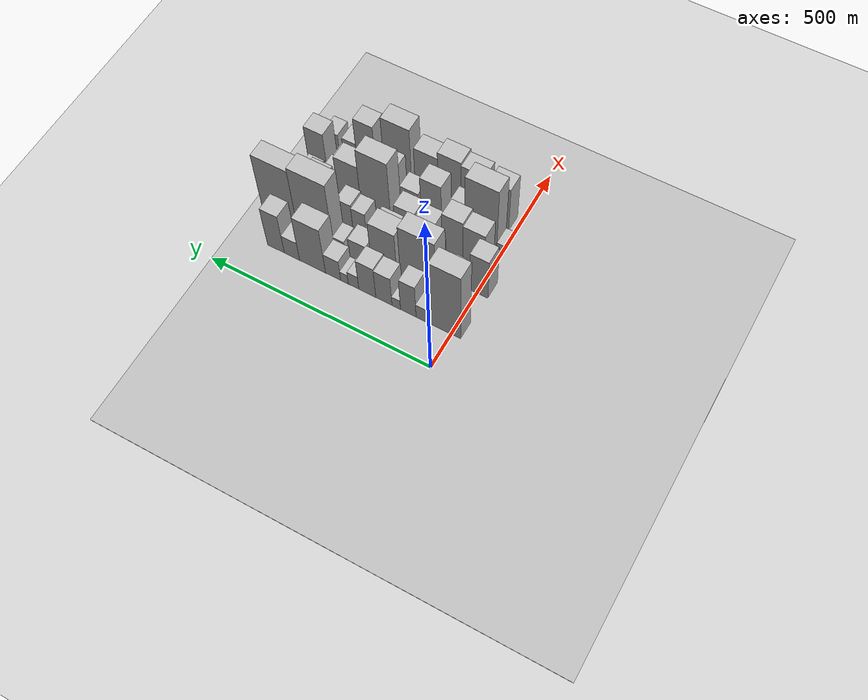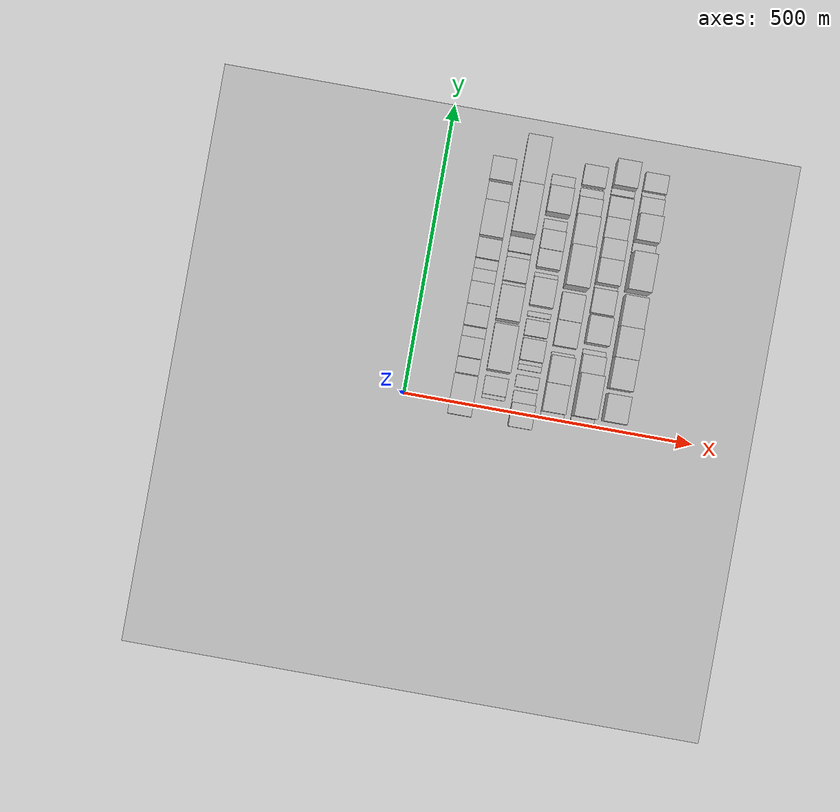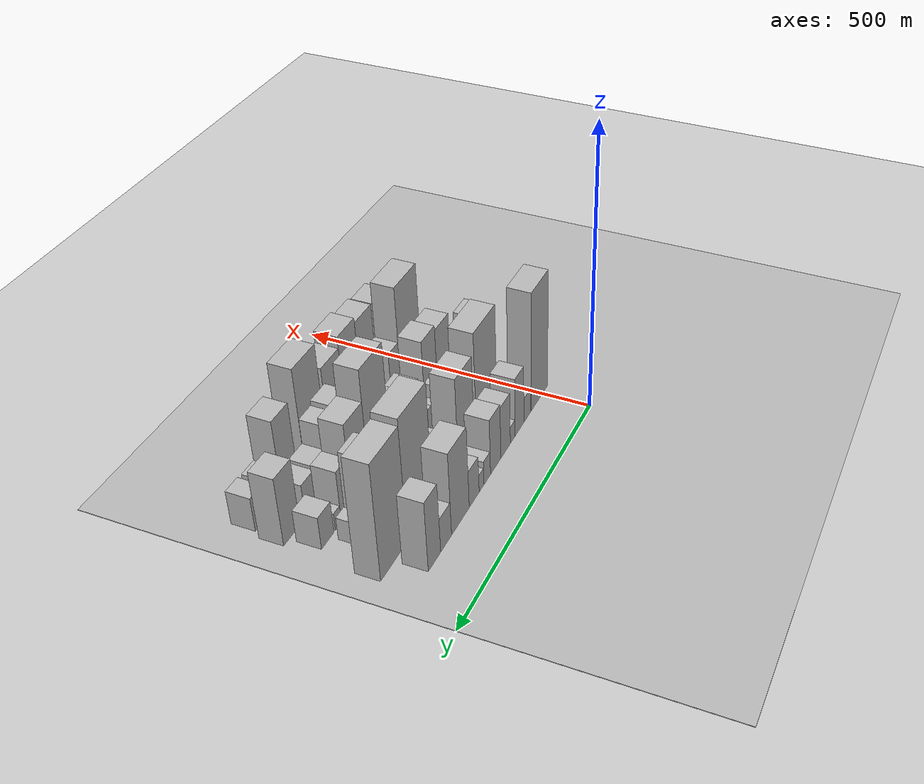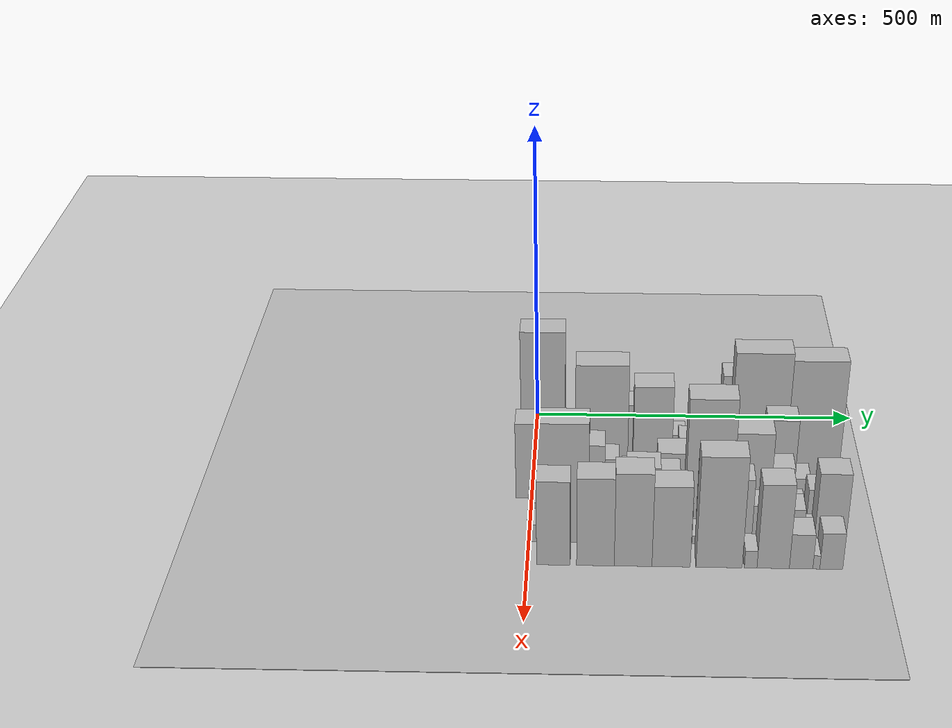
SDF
<sdf version="1.6">
 <world name="default">
  <include><name>ground_plane_1</name><uri>model://HANNAS_ground_plane</uri></include>
  <include>
   <name>ground_plane_2</name>
   <uri>model://HANNAS_ground_plane</uri>
   <pose>100 0 0  0 0 0</pose>
  </include>
  <model name="building_27">
   <static>1</static>
   <pose>100.0000 13.2216 0 0.000000 0.000000 0.000000</pose>
   <link name="link">
    <pose>0 0 112.50 0 0 0</pose>
    <collision name="collision"><geometry><box><size>40.0000 67.5674 225.0000</size></box></geometry></collision>
    <visual name="visual">
     <cast_shadows>0</cast_shadows>
     <geometry><box><size>40.0000 67.5674 225.0000</size></box></geometry>
     <material>
      <script>
       <uri>model://HANNAS_wall/materials/scripts</uri>
       <uri>model://HANNAS_wall/materials/textures</uri>
       <name>vrc/HANNAS_wall</name>
      </script>
     </material>
    </visual>
   </link>
  </model>
  <model name="building_28">
   <static>1</static>
   <pose>100.0000 64.4764 0 0.000000 0.000000 0.000000</pose>
   <link name="link">
    <pose>0 0 24.00 0 0 0</pose>
    <collision name="collision"><geometry><box><size>40.0000 26.9421 48.0000</size></box></geometry></collision>
    <visual name="visual">
     <cast_shadows>0</cast_shadows>
     <geometry><box><size>40.0000 26.9421 48.0000</size></box></geometry>
     <material>
      <script>
       <uri>model://HANNAS_wall/materials/scripts</uri>
       <uri>model://HANNAS_wall/materials/textures</uri>
       <name>vrc/HANNAS_wall</name>
      </script>
     </material>
    </visual>
   </link>
  </model>
  <model name="building_29">
   <static>1</static>
   <pose>100.0000 95.3213 0 0.000000 0.000000 0.000000</pose>
   <link name="link">
    <pose>0 0 55.50 0 0 0</pose>
    <collision name="collision"><geometry><box><size>40.0000 34.7477 111.0000</size></box></geometry></collision>
    <visual name="visual">
     <cast_shadows>0</cast_shadows>
     <geometry><box><size>40.0000 34.7477 111.0000</size></box></geometry>
     <material>
      <script>
       <uri>model://HANNAS_wall/materials/scripts</uri>
       <uri>model://HANNAS_wall/materials/textures</uri>
       <name>vrc/HANNAS_wall</name>
      </script>
     </material>
    </visual>
   </link>
  </model>
  <model name="building_30">
   <static>1</static>
   <pose>100.0000 122.2101 0 0.000000 0.000000 0.000000</pose>
   <link name="link">
    <pose>0 0 16.50 0 0 0</pose>
    <collision name="collision"><geometry><box><size>40.0000 19.0299 33.0000</size></box></geometry></collision>
    <visual name="visual">
     <cast_shadows>0</cast_shadows>
     <geometry><box><size>40.0000 19.0299 33.0000</size></box></geometry>
     <material>
      <script>
       <uri>model://HANNAS_wall/materials/scripts</uri>
       <uri>model://HANNAS_wall/materials/textures</uri>
       <name>vrc/HANNAS_wall</name>
      </script>
     </material>
    </visual>
   </link>
  </model>
  <model name="building_31">
   <static>1</static>
   <pose>100.0000 149.9771 0 0.000000 0.000000 0.000000</pose>
   <link name="link">
    <pose>0 0 49.50 0 0 0</pose>
    <collision name="collision"><geometry><box><size>40.0000 36.5041 99.0000</size></box></geometry></collision>
    <visual name="visual">
     <cast_shadows>0</cast_shadows>
     <geometry><box><size>40.0000 36.5041 99.0000</size></box></geometry>
     <material>
      <script>
       <uri>model://HANNAS_wall/materials/scripts</uri>
       <uri>model://HANNAS_wall/materials/textures</uri>
       <name>vrc/HANNAS_wall</name>
      </script>
     </material>
    </visual>
   </link>
  </model>
  <model name="building_32">
   <static>1</static>
   <pose>100.0000 187.5665 0 0.000000 0.000000 0.000000</pose>
   <link name="link">
    <pose>0 0 52.50 0 0 0</pose>
    <collision name="collision"><geometry><box><size>40.0000 38.6749 105.0000</size></box></geometry></collision>
    <visual name="visual">
     <cast_shadows>0</cast_shadows>
     <geometry><box><size>40.0000 38.6749 105.0000</size></box></geometry>
     <material>
      <script>
       <uri>model://HANNAS_wall/materials/scripts</uri>
       <uri>model://HANNAS_wall/materials/textures</uri>
       <name>vrc/HANNAS_wall</name>
      </script>
     </material>
    </visual>
   </link>
  </model>
  <model name="building_33">
   <static>1</static>
   <pose>100.0000 218.9175 0 0.000000 0.000000 0.000000</pose>
   <link name="link">
    <pose>0 0 22.50 0 0 0</pose>
    <collision name="collision"><geometry><box><size>40.0000 24.0271 45.0000</size></box></geometry></collision>
    <visual name="visual">
     <cast_shadows>0</cast_shadows>
     <geometry><box><size>40.0000 24.0271 45.0000</size></box></geometry>
     <material>
      <script>
       <uri>model://HANNAS_wall/materials/scripts</uri>
       <uri>model://HANNAS_wall/materials/textures</uri>
       <name>vrc/HANNAS_wall</name>
      </script>
     </material>
    </visual>
   </link>
  </model>
  <model name="building_34">
   <static>1</static>
   <pose>100.0000 239.6383 0 0.000000 0.000000 0.000000</pose>
   <link name="link">
    <pose>0 0 16.50 0 0 0</pose>
    <collision name="collision"><geometry><box><size>40.0000 17.4144 33.0000</size></box></geometry></collision>
    <visual name="visual">
     <cast_shadows>0</cast_shadows>
     <geometry><box><size>40.0000 17.4144 33.0000</size></box></geometry>
     <material>
      <script>
       <uri>model://HANNAS_wall/materials/scripts</uri>
       <uri>model://HANNAS_wall/materials/textures</uri>
       <name>vrc/HANNAS_wall</name>
      </script>
     </material>
    </visual>
   </link>
  </model>
  <model name="building_35">
   <static>1</static>
   <pose>100.0000 265.8331 0 0.000000 0.000000 0.000000</pose>
   <link name="link">
    <pose>0 0 34.50 0 0 0</pose>
    <collision name="collision"><geometry><box><size>40.0000 34.9752 69.0000</size></box></geometry></collision>
    <visual name="visual">
     <cast_shadows>0</cast_shadows>
     <geometry><box><size>40.0000 34.9752 69.0000</size></box></geometry>
     <material>
      <script>
       <uri>model://HANNAS_wall/materials/scripts</uri>
       <uri>model://HANNAS_wall/materials/textures</uri>
       <name>vrc/HANNAS_wall</name>
      </script>
     </material>
    </visual>
   </link>
  </model>
  <model name="building_36">
   <static>1</static>
   <pose>100.0000 313.4848 0 0.000000 0.000000 0.000000</pose>
   <link name="link">
    <pose>0 0 76.50 0 0 0</pose>
    <collision name="collision"><geometry><box><size>40.0000 60.3282 153.0000</size></box></geometry></collision>
    <visual name="visual">
     <cast_shadows>0</cast_shadows>
     <geometry><box><size>40.0000 60.3282 153.0000</size></box></geometry>
     <material>
      <script>
       <uri>model://HANNAS_wall/materials/scripts</uri>
       <uri>model://HANNAS_wall/materials/textures</uri>
       <name>vrc/HANNAS_wall</name>
      </script>
     </material>
    </visual>
   </link>
  </model>
  <model name="building_37">
   <static>1</static>
   <pose>100.0000 361.4340 0 0.000000 0.000000 0.000000</pose>
   <link name="link">
    <pose>0 0 31.50 0 0 0</pose>
    <collision name="collision"><geometry><box><size>40.0000 35.5702 63.0000</size></box></geometry></collision>
    <visual name="visual">
     <cast_shadows>0</cast_shadows>
     <geometry><box><size>40.0000 35.5702 63.0000</size></box></geometry>
     <material>
      <script>
       <uri>model://HANNAS_wall/materials/scripts</uri>
       <uri>model://HANNAS_wall/materials/textures</uri>
       <name>vrc/HANNAS_wall</name>
      </script>
     </material>
    </visual>
   </link>
  </model>
  <model name="building_38">
   <static>1</static>
   <pose>100.0000 399.0609 0 0.000000 0.000000 0.000000</pose>
   <link name="link">
    <pose>0 0 64.50 0 0 0</pose>
    <collision name="collision"><geometry><box><size>40.0000 39.6836 129.0000</size></box></geometry></collision>
    <visual name="visual">
     <cast_shadows>0</cast_shadows>
     <geometry><box><size>40.0000 39.6836 129.0000</size></box></geometry>
     <material>
      <script>
       <uri>model://HANNAS_wall/materials/scripts</uri>
       <uri>model://HANNAS_wall/materials/textures</uri>
       <name>vrc/HANNAS_wall</name>
      </script>
     </material>
    </visual>
   </link>
  </model>
  <model name="building_73">
   <static>1</static>
   <pose>152.0000 19.8623 0 0.000000 0.000000 0.000000</pose>
   <link name="link">
    <pose>0 0 7.50 0 0 0</pose>
    <collision name="collision"><geometry><box><size>40.0000 6.6824 15.0000</size></box></geometry></collision>
    <visual name="visual">
     <cast_shadows>0</cast_shadows>
     <geometry><box><size>40.0000 6.6824 15.0000</size></box></geometry>
     <material>
      <script>
       <uri>model://HANNAS_wall/materials/scripts</uri>
       <uri>model://HANNAS_wall/materials/textures</uri>
       <name>vrc/HANNAS_wall</name>
      </script>
     </material>
    </visual>
   </link>
  </model>
  <model name="building_74">
   <static>1</static>
   <pose>152.0000 38.7743 0 0.000000 0.000000 0.000000</pose>
   <link name="link">
    <pose>0 0 30.00 0 0 0</pose>
    <collision name="collision"><geometry><box><size>40.0000 31.1415 60.0000</size></box></geometry></collision>
    <visual name="visual">
     <cast_shadows>0</cast_shadows>
     <geometry><box><size>40.0000 31.1415 60.0000</size></box></geometry>
     <material>
      <script>
       <uri>model://HANNAS_wall/materials/scripts</uri>
       <uri>model://HANNAS_wall/materials/textures</uri>
       <name>vrc/HANNAS_wall</name>
      </script>
     </material>
    </visual>
   </link>
  </model>
  <model name="building_75">
   <static>1</static>
   <pose>152.0000 102.5179 0 0.000000 0.000000 0.000000</pose>
   <link name="link">
    <pose>0 0 100.50 0 0 0</pose>
    <collision name="collision"><geometry><box><size>40.0000 78.3458 201.0000</size></box></geometry></collision>
    <visual name="visual">
     <cast_shadows>0</cast_shadows>
     <geometry><box><size>40.0000 78.3458 201.0000</size></box></geometry>
     <material>
      <script>
       <uri>model://HANNAS_wall/materials/scripts</uri>
       <uri>model://HANNAS_wall/materials/textures</uri>
       <name>vrc/HANNAS_wall</name>
      </script>
     </material>
    </visual>
   </link>
  </model>
  <model name="building_76">
   <static>1</static>
   <pose>152.0000 178.8193 0 0.000000 0.000000 0.000000</pose>
   <link name="link">
    <pose>0 0 82.50 0 0 0</pose>
    <collision name="collision"><geometry><box><size>40.0000 58.2570 165.0000</size></box></geometry></collision>
    <visual name="visual">
     <cast_shadows>0</cast_shadows>
     <geometry><box><size>40.0000 58.2570 165.0000</size></box></geometry>
     <material>
      <script>
       <uri>model://HANNAS_wall/materials/scripts</uri>
       <uri>model://HANNAS_wall/materials/textures</uri>
       <name>vrc/HANNAS_wall</name>
      </script>
     </material>
    </visual>
   </link>
  </model>
  <model name="building_77">
   <static>1</static>
   <pose>152.0000 213.1095 0 0.000000 0.000000 0.000000</pose>
   <link name="link">
    <pose>0 0 12.00 0 0 0</pose>
    <collision name="collision"><geometry><box><size>40.0000 10.3234 24.0000</size></box></geometry></collision>
    <visual name="visual">
     <cast_shadows>0</cast_shadows>
     <geometry><box><size>40.0000 10.3234 24.0000</size></box></geometry>
     <material>
      <script>
       <uri>model://HANNAS_wall/materials/scripts</uri>
       <uri>model://HANNAS_wall/materials/textures</uri>
       <name>vrc/HANNAS_wall</name>
      </script>
     </material>
    </visual>
   </link>
  </model>
  <model name="building_78">
   <static>1</static>
   <pose>152.0000 238.5202 0 0.000000 0.000000 0.000000</pose>
   <link name="link">
    <pose>0 0 36.00 0 0 0</pose>
    <collision name="collision"><geometry><box><size>40.0000 40.4979 72.0000</size></box></geometry></collision>
    <visual name="visual">
     <cast_shadows>0</cast_shadows>
     <geometry><box><size>40.0000 40.4979 72.0000</size></box></geometry>
     <material>
      <script>
       <uri>model://HANNAS_wall/materials/scripts</uri>
       <uri>model://HANNAS_wall/materials/textures</uri>
       <name>vrc/HANNAS_wall</name>
      </script>
     </material>
    </visual>
   </link>
  </model>
  <model name="building_79">
   <static>1</static>
   <pose>152.0000 264.0107 0 0.000000 0.000000 0.000000</pose>
   <link name="link">
    <pose>0 0 10.50 0 0 0</pose>
    <collision name="collision"><geometry><box><size>40.0000 10.4831 21.0000</size></box></geometry></collision>
    <visual name="visual">
     <cast_shadows>0</cast_shadows>
     <geometry><box><size>40.0000 10.4831 21.0000</size></box></geometry>
     <material>
      <script>
       <uri>model://HANNAS_wall/materials/scripts</uri>
       <uri>model://HANNAS_wall/materials/textures</uri>
       <name>vrc/HANNAS_wall</name>
      </script>
     </material>
    </visual>
   </link>
  </model>
  <model name="building_80">
   <static>1</static>
   <pose>152.0000 282.2020 0 0.000000 0.000000 0.000000</pose>
   <link name="link">
    <pose>0 0 25.50 0 0 0</pose>
    <collision name="collision"><geometry><box><size>40.0000 25.8995 51.0000</size></box></geometry></collision>
    <visual name="visual">
     <cast_shadows>0</cast_shadows>
     <geometry><box><size>40.0000 25.8995 51.0000</size></box></geometry>
     <material>
      <script>
       <uri>model://HANNAS_wall/materials/scripts</uri>
       <uri>model://HANNAS_wall/materials/textures</uri>
       <name>vrc/HANNAS_wall</name>
      </script>
     </material>
    </visual>
   </link>
  </model>
  <model name="building_81">
   <static>1</static>
   <pose>152.0000 337.0492 0 0.000000 0.000000 0.000000</pose>
   <link name="link">
    <pose>0 0 112.50 0 0 0</pose>
    <collision name="collision"><geometry><box><size>40.0000 83.7949 225.0000</size></box></geometry></collision>
    <visual name="visual">
     <cast_shadows>0</cast_shadows>
     <geometry><box><size>40.0000 83.7949 225.0000</size></box></geometry>
     <material>
      <script>
       <uri>model://HANNAS_wall/materials/scripts</uri>
       <uri>model://HANNAS_wall/materials/textures</uri>
       <name>vrc/HANNAS_wall</name>
      </script>
     </material>
    </visual>
   </link>
  </model>
  <model name="building_82">
   <static>1</static>
   <pose>152.0000 419.2887 0 0.000000 0.000000 0.000000</pose>
   <link name="link">
    <pose>0 0 106.50 0 0 0</pose>
    <collision name="collision"><geometry><box><size>40.0000 80.6842 213.0000</size></box></geometry></collision>
    <visual name="visual">
     <cast_shadows>0</cast_shadows>
     <geometry><box><size>40.0000 80.6842 213.0000</size></box></geometry>
     <material>
      <script>
       <uri>model://HANNAS_wall/materials/scripts</uri>
       <uri>model://HANNAS_wall/materials/textures</uri>
       <name>vrc/HANNAS_wall</name>
      </script>
     </material>
    </visual>
   </link>
  </model>
  <model name="building_119">
   <static>1</static>
   <pose>204.0000 -3.3981 0 0.000000 0.000000 0.000000</pose>
   <link name="link">
    <pose>0 0 66.00 0 0 0</pose>
    <collision name="collision"><geometry><box><size>40.0000 41.2160 132.0000</size></box></geometry></collision>
    <visual name="visual">
     <cast_shadows>0</cast_shadows>
     <geometry><box><size>40.0000 41.2160 132.0000</size></box></geometry>
     <material>
      <script>
       <uri>model://HANNAS_wall/materials/scripts</uri>
       <uri>model://HANNAS_wall/materials/textures</uri>
       <name>vrc/HANNAS_wall</name>
      </script>
     </material>
    </visual>
   </link>
  </model>
  <model name="building_120">
   <static>1</static>
   <pose>204.0000 27.8079 0 0.000000 0.000000 0.000000</pose>
   <link name="link">
    <pose>0 0 18.00 0 0 0</pose>
    <collision name="collision"><geometry><box><size>40.0000 21.1960 36.0000</size></box></geometry></collision>
    <visual name="visual">
     <cast_shadows>0</cast_shadows>
     <geometry><box><size>40.0000 21.1960 36.0000</size></box></geometry>
     <material>
      <script>
       <uri>model://HANNAS_wall/materials/scripts</uri>
       <uri>model://HANNAS_wall/materials/textures</uri>
       <name>vrc/HANNAS_wall</name>
      </script>
     </material>
    </visual>
   </link>
  </model>
  <model name="building_121">
   <static>1</static>
   <pose>204.0000 55.0199 0 0.000000 0.000000 0.000000</pose>
   <link name="link">
    <pose>0 0 18.00 0 0 0</pose>
    <collision name="collision"><geometry><box><size>40.0000 21.2279 36.0000</size></box></geometry></collision>
    <visual name="visual">
     <cast_shadows>0</cast_shadows>
     <geometry><box><size>40.0000 21.2279 36.0000</size></box></geometry>
     <material>
      <script>
       <uri>model://HANNAS_wall/materials/scripts</uri>
       <uri>model://HANNAS_wall/materials/textures</uri>
       <name>vrc/HANNAS_wall</name>
      </script>
     </material>
    </visual>
   </link>
  </model>
  <model name="building_122">
   <static>1</static>
   <pose>204.0000 79.4719 0 0.000000 0.000000 0.000000</pose>
   <link name="link">
    <pose>0 0 10.50 0 0 0</pose>
    <collision name="collision"><geometry><box><size>40.0000 9.6762 21.0000</size></box></geometry></collision>
    <visual name="visual">
     <cast_shadows>0</cast_shadows>
     <geometry><box><size>40.0000 9.6762 21.0000</size></box></geometry>
     <material>
      <script>
       <uri>model://HANNAS_wall/materials/scripts</uri>
       <uri>model://HANNAS_wall/materials/textures</uri>
       <name>vrc/HANNAS_wall</name>
      </script>
     </material>
    </visual>
   </link>
  </model>
  <model name="building_123">
   <static>1</static>
   <pose>204.0000 87.6739 0 0.000000 0.000000 0.000000</pose>
   <link name="link">
    <pose>0 0 7.50 0 0 0</pose>
    <collision name="collision"><geometry><box><size>40.0000 6.7277 15.0000</size></box></geometry></collision>
    <visual name="visual">
     <cast_shadows>0</cast_shadows>
     <geometry><box><size>40.0000 6.7277 15.0000</size></box></geometry>
     <material>
      <script>
       <uri>model://HANNAS_wall/materials/scripts</uri>
       <uri>model://HANNAS_wall/materials/textures</uri>
       <name>vrc/HANNAS_wall</name>
      </script>
     </material>
    </visual>
   </link>
  </model>
  <model name="building_124">
   <static>1</static>
   <pose>204.0000 109.7124 0 0.000000 0.000000 0.000000</pose>
   <link name="link">
    <pose>0 0 36.00 0 0 0</pose>
    <collision name="collision"><geometry><box><size>40.0000 37.3494 72.0000</size></box></geometry></collision>
    <visual name="visual">
     <cast_shadows>0</cast_shadows>
     <geometry><box><size>40.0000 37.3494 72.0000</size></box></geometry>
     <material>
      <script>
       <uri>model://HANNAS_wall/materials/scripts</uri>
       <uri>model://HANNAS_wall/materials/textures</uri>
       <name>vrc/HANNAS_wall</name>
      </script>
     </material>
    </visual>
   </link>
  </model>
  <model name="building_125">
   <static>1</static>
   <pose>204.0000 147.2121 0 0.000000 0.000000 0.000000</pose>
   <link name="link">
    <pose>0 0 25.50 0 0 0</pose>
    <collision name="collision"><geometry><box><size>40.0000 27.6498 51.0000</size></box></geometry></collision>
    <visual name="visual">
     <cast_shadows>0</cast_shadows>
     <geometry><box><size>40.0000 27.6498 51.0000</size></box></geometry>
     <material>
      <script>
       <uri>model://HANNAS_wall/materials/scripts</uri>
       <uri>model://HANNAS_wall/materials/textures</uri>
       <name>vrc/HANNAS_wall</name>
      </script>
     </material>
    </visual>
   </link>
  </model>
  <model name="building_126">
   <static>1</static>
   <pose>204.0000 171.4662 0 0.000000 0.000000 0.000000</pose>
   <link name="link">
    <pose>0 0 9.00 0 0 0</pose>
    <collision name="collision"><geometry><box><size>40.0000 8.8585 18.0000</size></box></geometry></collision>
    <visual name="visual">
     <cast_shadows>0</cast_shadows>
     <geometry><box><size>40.0000 8.8585 18.0000</size></box></geometry>
     <material>
      <script>
       <uri>model://HANNAS_wall/materials/scripts</uri>
       <uri>model://HANNAS_wall/materials/textures</uri>
       <name>vrc/HANNAS_wall</name>
      </script>
     </material>
    </visual>
   </link>
  </model>
  <model name="building_127">
   <static>1</static>
   <pose>204.0000 209.0223 0 0.000000 0.000000 0.000000</pose>
   <link name="link">
    <pose>0 0 42.00 0 0 0</pose>
    <collision name="collision"><geometry><box><size>40.0000 48.2535 84.0000</size></box></geometry></collision>
    <visual name="visual">
     <cast_shadows>0</cast_shadows>
     <geometry><box><size>40.0000 48.2535 84.0000</size></box></geometry>
     <material>
      <script>
       <uri>model://HANNAS_wall/materials/scripts</uri>
       <uri>model://HANNAS_wall/materials/textures</uri>
       <name>vrc/HANNAS_wall</name>
      </script>
     </material>
    </visual>
   </link>
  </model>
  <model name="building_128">
   <static>1</static>
   <pose>204.0000 237.9112 0 0.000000 0.000000 0.000000</pose>
   <link name="link">
    <pose>0 0 10.50 0 0 0</pose>
    <collision name="collision"><geometry><box><size>40.0000 9.5244 21.0000</size></box></geometry></collision>
    <visual name="visual">
     <cast_shadows>0</cast_shadows>
     <geometry><box><size>40.0000 9.5244 21.0000</size></box></geometry>
     <material>
      <script>
       <uri>model://HANNAS_wall/materials/scripts</uri>
       <uri>model://HANNAS_wall/materials/textures</uri>
       <name>vrc/HANNAS_wall</name>
      </script>
     </material>
    </visual>
   </link>
  </model>
  <model name="building_129">
   <static>1</static>
   <pose>204.0000 265.3876 0 0.000000 0.000000 0.000000</pose>
   <link name="link">
    <pose>0 0 46.50 0 0 0</pose>
    <collision name="collision"><geometry><box><size>40.0000 31.4283 93.0000</size></box></geometry></collision>
    <visual name="visual">
     <cast_shadows>0</cast_shadows>
     <geometry><box><size>40.0000 31.4283 93.0000</size></box></geometry>
     <material>
      <script>
       <uri>model://HANNAS_wall/materials/scripts</uri>
       <uri>model://HANNAS_wall/materials/textures</uri>
       <name>vrc/HANNAS_wall</name>
      </script>
     </material>
    </visual>
   </link>
  </model>
  <model name="building_130">
   <static>1</static>
   <pose>204.0000 297.7533 0 0.000000 0.000000 0.000000</pose>
   <link name="link">
    <pose>0 0 51.00 0 0 0</pose>
    <collision name="collision"><geometry><box><size>40.0000 33.3032 102.0000</size></box></geometry></collision>
    <visual name="visual">
     <cast_shadows>0</cast_shadows>
     <geometry><box><size>40.0000 33.3032 102.0000</size></box></geometry>
     <material>
      <script>
       <uri>model://HANNAS_wall/materials/scripts</uri>
       <uri>model://HANNAS_wall/materials/textures</uri>
       <name>vrc/HANNAS_wall</name>
      </script>
     </material>
    </visual>
   </link>
  </model>
  <model name="building_131">
   <static>1</static>
   <pose>204.0000 324.5109 0 0.000000 0.000000 0.000000</pose>
   <link name="link">
    <pose>0 0 18.00 0 0 0</pose>
    <collision name="collision"><geometry><box><size>40.0000 20.2119 36.0000</size></box></geometry></collision>
    <visual name="visual">
     <cast_shadows>0</cast_shadows>
     <geometry><box><size>40.0000 20.2119 36.0000</size></box></geometry>
     <material>
      <script>
       <uri>model://HANNAS_wall/materials/scripts</uri>
       <uri>model://HANNAS_wall/materials/textures</uri>
       <name>vrc/HANNAS_wall</name>
      </script>
     </material>
    </visual>
   </link>
  </model>
  <model name="building_132">
   <static>1</static>
   <pose>204.0000 364.2510 0 0.000000 0.000000 0.000000</pose>
   <link name="link">
    <pose>0 0 72.00 0 0 0</pose>
    <collision name="collision"><geometry><box><size>40.0000 45.2684 144.0000</size></box></geometry></collision>
    <visual name="visual">
     <cast_shadows>0</cast_shadows>
     <geometry><box><size>40.0000 45.2684 144.0000</size></box></geometry>
     <material>
      <script>
       <uri>model://HANNAS_wall/materials/scripts</uri>
       <uri>model://HANNAS_wall/materials/textures</uri>
       <name>vrc/HANNAS_wall</name>
      </script>
     </material>
    </visual>
   </link>
  </model>
  <model name="building_133">
   <static>1</static>
   <pose>204.0000 398.8736 0 0.000000 0.000000 0.000000</pose>
   <link name="link">
    <pose>0 0 21.00 0 0 0</pose>
    <collision name="collision"><geometry><box><size>40.0000 23.9767 42.0000</size></box></geometry></collision>
    <visual name="visual">
     <cast_shadows>0</cast_shadows>
     <geometry><box><size>40.0000 23.9767 42.0000</size></box></geometry>
     <material>
      <script>
       <uri>model://HANNAS_wall/materials/scripts</uri>
       <uri>model://HANNAS_wall/materials/textures</uri>
       <name>vrc/HANNAS_wall</name>
      </script>
     </material>
    </visual>
   </link>
  </model>
  <model name="building_170">
   <static>1</static>
   <pose>256.0000 3.9679 0 0.000000 0.000000 0.000000</pose>
   <link name="link">
    <pose>0 0 15.00 0 0 0</pose>
    <collision name="collision"><geometry><box><size>40.0000 15.0082 30.0000</size></box></geometry></collision>
    <visual name="visual">
     <cast_shadows>0</cast_shadows>
     <geometry><box><size>40.0000 15.0082 30.0000</size></box></geometry>
     <material>
      <script>
       <uri>model://HANNAS_wall/materials/scripts</uri>
       <uri>model://HANNAS_wall/materials/textures</uri>
       <name>vrc/HANNAS_wall</name>
      </script>
     </material>
    </visual>
   </link>
  </model>
  <model name="building_171">
   <static>1</static>
   <pose>256.0000 35.9447 0 0.000000 0.000000 0.000000</pose>
   <link name="link">
    <pose>0 0 61.50 0 0 0</pose>
    <collision name="collision"><geometry><box><size>40.0000 48.9454 123.0000</size></box></geometry></collision>
    <visual name="visual">
     <cast_shadows>0</cast_shadows>
     <geometry><box><size>40.0000 48.9454 123.0000</size></box></geometry>
     <material>
      <script>
       <uri>model://HANNAS_wall/materials/scripts</uri>
       <uri>model://HANNAS_wall/materials/textures</uri>
       <name>vrc/HANNAS_wall</name>
      </script>
     </material>
    </visual>
   </link>
  </model>
  <model name="building_172">
   <static>1</static>
   <pose>256.0000 83.7700 0 0.000000 0.000000 0.000000</pose>
   <link name="link">
    <pose>0 0 66.00 0 0 0</pose>
    <collision name="collision"><geometry><box><size>40.0000 46.7054 132.0000</size></box></geometry></collision>
    <visual name="visual">
     <cast_shadows>0</cast_shadows>
     <geometry><box><size>40.0000 46.7054 132.0000</size></box></geometry>
     <material>
      <script>
       <uri>model://HANNAS_wall/materials/scripts</uri>
       <uri>model://HANNAS_wall/materials/textures</uri>
       <name>vrc/HANNAS_wall</name>
      </script>
     </material>
    </visual>
   </link>
  </model>
  <model name="building_173">
   <static>1</static>
   <pose>256.0000 110.8583 0 0.000000 0.000000 0.000000</pose>
   <link name="link">
    <pose>0 0 7.50 0 0 0</pose>
    <collision name="collision"><geometry><box><size>40.0000 7.4712 15.0000</size></box></geometry></collision>
    <visual name="visual">
     <cast_shadows>0</cast_shadows>
     <geometry><box><size>40.0000 7.4712 15.0000</size></box></geometry>
     <material>
      <script>
       <uri>model://HANNAS_wall/materials/scripts</uri>
       <uri>model://HANNAS_wall/materials/textures</uri>
       <name>vrc/HANNAS_wall</name>
      </script>
     </material>
    </visual>
   </link>
  </model>
  <model name="building_174">
   <static>1</static>
   <pose>256.0000 146.6210 0 0.000000 0.000000 0.000000</pose>
   <link name="link">
    <pose>0 0 37.50 0 0 0</pose>
    <collision name="collision"><geometry><box><size>40.0000 44.0542 75.0000</size></box></geometry></collision>
    <visual name="visual">
     <cast_shadows>0</cast_shadows>
     <geometry><box><size>40.0000 44.0542 75.0000</size></box></geometry>
     <material>
      <script>
       <uri>model://HANNAS_wall/materials/scripts</uri>
       <uri>model://HANNAS_wall/materials/textures</uri>
       <name>vrc/HANNAS_wall</name>
      </script>
     </material>
    </visual>
   </link>
  </model>
  <model name="building_175">
   <static>1</static>
   <pose>256.0000 192.3889 0 0.000000 0.000000 0.000000</pose>
   <link name="link">
    <pose>0 0 42.00 0 0 0</pose>
    <collision name="collision"><geometry><box><size>40.0000 47.4817 84.0000</size></box></geometry></collision>
    <visual name="visual">
     <cast_shadows>0</cast_shadows>
     <geometry><box><size>40.0000 47.4817 84.0000</size></box></geometry>
     <material>
      <script>
       <uri>model://HANNAS_wall/materials/scripts</uri>
       <uri>model://HANNAS_wall/materials/textures</uri>
       <name>vrc/HANNAS_wall</name>
      </script>
     </material>
    </visual>
   </link>
  </model>
  <model name="building_176">
   <static>1</static>
   <pose>256.0000 258.6175 0 0.000000 0.000000 0.000000</pose>
   <link name="link">
    <pose>0 0 106.50 0 0 0</pose>
    <collision name="collision"><geometry><box><size>40.0000 68.9754 213.0000</size></box></geometry></collision>
    <visual name="visual">
     <cast_shadows>0</cast_shadows>
     <geometry><box><size>40.0000 68.9754 213.0000</size></box></geometry>
     <material>
      <script>
       <uri>model://HANNAS_wall/materials/scripts</uri>
       <uri>model://HANNAS_wall/materials/textures</uri>
       <name>vrc/HANNAS_wall</name>
      </script>
     </material>
    </visual>
   </link>
  </model>
  <model name="building_177">
   <static>1</static>
   <pose>256.0000 319.9795 0 0.000000 0.000000 0.000000</pose>
   <link name="link">
    <pose>0 0 78.00 0 0 0</pose>
    <collision name="collision"><geometry><box><size>40.0000 53.7486 156.0000</size></box></geometry></collision>
    <visual name="visual">
     <cast_shadows>0</cast_shadows>
     <geometry><box><size>40.0000 53.7486 156.0000</size></box></geometry>
     <material>
      <script>
       <uri>model://HANNAS_wall/materials/scripts</uri>
       <uri>model://HANNAS_wall/materials/textures</uri>
       <name>vrc/HANNAS_wall</name>
      </script>
     </material>
    </visual>
   </link>
  </model>
  <model name="building_178">
   <static>1</static>
   <pose>256.0000 363.0875 0 0.000000 0.000000 0.000000</pose>
   <link name="link">
    <pose>0 0 48.00 0 0 0</pose>
    <collision name="collision"><geometry><box><size>40.0000 32.4675 96.0000</size></box></geometry></collision>
    <visual name="visual">
     <cast_shadows>0</cast_shadows>
     <geometry><box><size>40.0000 32.4675 96.0000</size></box></geometry>
     <material>
      <script>
       <uri>model://HANNAS_wall/materials/scripts</uri>
       <uri>model://HANNAS_wall/materials/textures</uri>
       <name>vrc/HANNAS_wall</name>
      </script>
     </material>
    </visual>
   </link>
  </model>
  <model name="building_179">
   <static>1</static>
   <pose>256.0000 388.3083 0 0.000000 0.000000 0.000000</pose>
   <link name="link">
    <pose>0 0 16.50 0 0 0</pose>
    <collision name="collision"><geometry><box><size>40.0000 17.9741 33.0000</size></box></geometry></collision>
    <visual name="visual">
     <cast_shadows>0</cast_shadows>
     <geometry><box><size>40.0000 17.9741 33.0000</size></box></geometry>
     <material>
      <script>
       <uri>model://HANNAS_wall/materials/scripts</uri>
       <uri>model://HANNAS_wall/materials/textures</uri>
       <name>vrc/HANNAS_wall</name>
      </script>
     </material>
    </visual>
   </link>
  </model>
  <model name="building_180">
   <static>1</static>
   <pose>256.0000 419.1254 0 0.000000 0.000000 0.000000</pose>
   <link name="link">
    <pose>0 0 30.00 0 0 0</pose>
    <collision name="collision"><geometry><box><size>40.0000 35.6601 60.0000</size></box></geometry></collision>
    <visual name="visual">
     <cast_shadows>0</cast_shadows>
     <geometry><box><size>40.0000 35.6601 60.0000</size></box></geometry>
     <material>
      <script>
       <uri>model://HANNAS_wall/materials/scripts</uri>
       <uri>model://HANNAS_wall/materials/textures</uri>
       <name>vrc/HANNAS_wall</name>
      </script>
     </material>
    </visual>
   </link>
  </model>
  <model name="building_219">
   <static>1</static>
   <pose>308.0000 4.6352 0 0.000000 0.000000 0.000000</pose>
   <link name="link">
    <pose>0 0 15.00 0 0 0</pose>
    <collision name="collision"><geometry><box><size>40.0000 15.0677 30.0000</size></box></geometry></collision>
    <visual name="visual">
     <cast_shadows>0</cast_shadows>
     <geometry><box><size>40.0000 15.0677 30.0000</size></box></geometry>
     <material>
      <script>
       <uri>model://HANNAS_wall/materials/scripts</uri>
       <uri>model://HANNAS_wall/materials/textures</uri>
       <name>vrc/HANNAS_wall</name>
      </script>
     </material>
    </visual>
   </link>
  </model>
  <model name="building_220">
   <static>1</static>
   <pose>308.0000 48.6038 0 0.000000 0.000000 0.000000</pose>
   <link name="link">
    <pose>0 0 102.00 0 0 0</pose>
    <collision name="collision"><geometry><box><size>40.0000 72.8696 204.0000</size></box></geometry></collision>
    <visual name="visual">
     <cast_shadows>0</cast_shadows>
     <geometry><box><size>40.0000 72.8696 204.0000</size></box></geometry>
     <material>
      <script>
       <uri>model://HANNAS_wall/materials/scripts</uri>
       <uri>model://HANNAS_wall/materials/textures</uri>
       <name>vrc/HANNAS_wall</name>
      </script>
     </material>
    </visual>
   </link>
  </model>
  <model name="building_221">
   <static>1</static>
   <pose>308.0000 101.6779 0 0.000000 0.000000 0.000000</pose>
   <link name="link">
    <pose>0 0 51.00 0 0 0</pose>
    <collision name="collision"><geometry><box><size>40.0000 33.2785 102.0000</size></box></geometry></collision>
    <visual name="visual">
     <cast_shadows>0</cast_shadows>
     <geometry><box><size>40.0000 33.2785 102.0000</size></box></geometry>
     <material>
      <script>
       <uri>model://HANNAS_wall/materials/scripts</uri>
       <uri>model://HANNAS_wall/materials/textures</uri>
       <name>vrc/HANNAS_wall</name>
      </script>
     </material>
    </visual>
   </link>
  </model>
  <model name="building_222">
   <static>1</static>
   <pose>308.0000 123.3586 0 0.000000 0.000000 0.000000</pose>
   <link name="link">
    <pose>0 0 12.00 0 0 0</pose>
    <collision name="collision"><geometry><box><size>40.0000 10.0829 24.0000</size></box></geometry></collision>
    <visual name="visual">
     <cast_shadows>0</cast_shadows>
     <geometry><box><size>40.0000 10.0829 24.0000</size></box></geometry>
     <material>
      <script>
       <uri>model://HANNAS_wall/materials/scripts</uri>
       <uri>model://HANNAS_wall/materials/textures</uri>
       <name>vrc/HANNAS_wall</name>
      </script>
     </material>
    </visual>
   </link>
  </model>
  <model name="building_223">
   <static>1</static>
   <pose>308.0000 161.2370 0 0.000000 0.000000 0.000000</pose>
   <link name="link">
    <pose>0 0 66.00 0 0 0</pose>
    <collision name="collision"><geometry><box><size>40.0000 47.6739 132.0000</size></box></geometry></collision>
    <visual name="visual">
     <cast_shadows>0</cast_shadows>
     <geometry><box><size>40.0000 47.6739 132.0000</size></box></geometry>
     <material>
      <script>
       <uri>model://HANNAS_wall/materials/scripts</uri>
       <uri>model://HANNAS_wall/materials/textures</uri>
       <name>vrc/HANNAS_wall</name>
      </script>
     </material>
    </visual>
   </link>
  </model>
  <model name="building_224">
   <static>1</static>
   <pose>308.0000 211.3316 0 0.000000 0.000000 0.000000</pose>
   <link name="link">
    <pose>0 0 36.00 0 0 0</pose>
    <collision name="collision"><geometry><box><size>40.0000 42.5153 72.0000</size></box></geometry></collision>
    <visual name="visual">
     <cast_shadows>0</cast_shadows>
     <geometry><box><size>40.0000 42.5153 72.0000</size></box></geometry>
     <material>
      <script>
       <uri>model://HANNAS_wall/materials/scripts</uri>
       <uri>model://HANNAS_wall/materials/textures</uri>
       <name>vrc/HANNAS_wall</name>
      </script>
     </material>
    </visual>
   </link>
  </model>
  <model name="building_225">
   <static>1</static>
   <pose>308.0000 236.3168 0 0.000000 0.000000 0.000000</pose>
   <link name="link">
    <pose>0 0 7.50 0 0 0</pose>
    <collision name="collision"><geometry><box><size>40.0000 7.4551 15.0000</size></box></geometry></collision>
    <visual name="visual">
     <cast_shadows>0</cast_shadows>
     <geometry><box><size>40.0000 7.4551 15.0000</size></box></geometry>
     <material>
      <script>
       <uri>model://HANNAS_wall/materials/scripts</uri>
       <uri>model://HANNAS_wall/materials/textures</uri>
       <name>vrc/HANNAS_wall</name>
      </script>
     </material>
    </visual>
   </link>
  </model>
  <model name="building_226">
   <static>1</static>
   <pose>308.0000 261.3625 0 0.000000 0.000000 0.000000</pose>
   <link name="link">
    <pose>0 0 61.50 0 0 0</pose>
    <collision name="collision"><geometry><box><size>40.0000 42.6364 123.0000</size></box></geometry></collision>
    <visual name="visual">
     <cast_shadows>0</cast_shadows>
     <geometry><box><size>40.0000 42.6364 123.0000</size></box></geometry>
     <material>
      <script>
       <uri>model://HANNAS_wall/materials/scripts</uri>
       <uri>model://HANNAS_wall/materials/textures</uri>
       <name>vrc/HANNAS_wall</name>
      </script>
     </material>
    </visual>
   </link>
  </model>
  <model name="building_227">
   <static>1</static>
   <pose>308.0000 300.0217 0 0.000000 0.000000 0.000000</pose>
   <link name="link">
    <pose>0 0 57.00 0 0 0</pose>
    <collision name="collision"><geometry><box><size>40.0000 34.6820 114.0000</size></box></geometry></collision>
    <visual name="visual">
     <cast_shadows>0</cast_shadows>
     <geometry><box><size>40.0000 34.6820 114.0000</size></box></geometry>
     <material>
      <script>
       <uri>model://HANNAS_wall/materials/scripts</uri>
       <uri>model://HANNAS_wall/materials/textures</uri>
       <name>vrc/HANNAS_wall</name>
      </script>
     </material>
    </visual>
   </link>
  </model>
  <model name="building_228">
   <static>1</static>
   <pose>308.0000 336.3878 0 0.000000 0.000000 0.000000</pose>
   <link name="link">
    <pose>0 0 34.50 0 0 0</pose>
    <collision name="collision"><geometry><box><size>40.0000 38.0501 69.0000</size></box></geometry></collision>
    <visual name="visual">
     <cast_shadows>0</cast_shadows>
     <geometry><box><size>40.0000 38.0501 69.0000</size></box></geometry>
     <material>
      <script>
       <uri>model://HANNAS_wall/materials/scripts</uri>
       <uri>model://HANNAS_wall/materials/textures</uri>
       <name>vrc/HANNAS_wall</name>
      </script>
     </material>
    </visual>
   </link>
  </model>
  <model name="building_229">
   <static>1</static>
   <pose>308.0000 373.3225 0 0.000000 0.000000 0.000000</pose>
   <link name="link">
    <pose>0 0 31.50 0 0 0</pose>
    <collision name="collision"><geometry><box><size>40.0000 35.8194 63.0000</size></box></geometry></collision>
    <visual name="visual">
     <cast_shadows>0</cast_shadows>
     <geometry><box><size>40.0000 35.8194 63.0000</size></box></geometry>
     <material>
      <script>
       <uri>model://HANNAS_wall/materials/scripts</uri>
       <uri>model://HANNAS_wall/materials/textures</uri>
       <name>vrc/HANNAS_wall</name>
      </script>
     </material>
    </visual>
   </link>
  </model>
  <model name="building_230">
   <static>1</static>
   <pose>308.0000 400.8493 0 0.000000 0.000000 0.000000</pose>
   <link name="link">
    <pose>0 0 13.50 0 0 0</pose>
    <collision name="collision"><geometry><box><size>40.0000 11.2342 27.0000</size></box></geometry></collision>
    <visual name="visual">
     <cast_shadows>0</cast_shadows>
     <geometry><box><size>40.0000 11.2342 27.0000</size></box></geometry>
     <material>
      <script>
       <uri>model://HANNAS_wall/materials/scripts</uri>
       <uri>model://HANNAS_wall/materials/textures</uri>
       <name>vrc/HANNAS_wall</name>
      </script>
     </material>
    </visual>
   </link>
  </model>
  <model name="building_231">
   <static>1</static>
   <pose>308.0000 428.8838 0 0.000000 0.000000 0.000000</pose>
   <link name="link">
    <pose>0 0 63.00 0 0 0</pose>
    <collision name="collision"><geometry><box><size>40.0000 44.8349 126.0000</size></box></geometry></collision>
    <visual name="visual">
     <cast_shadows>0</cast_shadows>
     <geometry><box><size>40.0000 44.8349 126.0000</size></box></geometry>
     <material>
      <script>
       <uri>model://HANNAS_wall/materials/scripts</uri>
       <uri>model://HANNAS_wall/materials/textures</uri>
       <name>vrc/HANNAS_wall</name>
      </script>
     </material>
    </visual>
   </link>
  </model>
  <model name="building_263">
   <static>1</static>
   <pose>360.0000 36.2904 0 0.000000 0.000000 0.000000</pose>
   <link name="link">
    <pose>0 0 72.00 0 0 0</pose>
    <collision name="collision"><geometry><box><size>40.0000 47.0619 144.0000</size></box></geometry></collision>
    <visual name="visual">
     <cast_shadows>0</cast_shadows>
     <geometry><box><size>40.0000 47.0619 144.0000</size></box></geometry>
     <material>
      <script>
       <uri>model://HANNAS_wall/materials/scripts</uri>
       <uri>model://HANNAS_wall/materials/textures</uri>
       <name>vrc/HANNAS_wall</name>
      </script>
     </material>
    </visual>
   </link>
  </model>
  <model name="building_264">
   <static>1</static>
   <pose>360.0000 95.2641 0 0.000000 0.000000 0.000000</pose>
   <link name="link">
    <pose>0 0 75.00 0 0 0</pose>
    <collision name="collision"><geometry><box><size>40.0000 52.8855 150.0000</size></box></geometry></collision>
    <visual name="visual">
     <cast_shadows>0</cast_shadows>
     <geometry><box><size>40.0000 52.8855 150.0000</size></box></geometry>
     <material>
      <script>
       <uri>model://HANNAS_wall/materials/scripts</uri>
       <uri>model://HANNAS_wall/materials/textures</uri>
       <name>vrc/HANNAS_wall</name>
      </script>
     </material>
    </visual>
   </link>
  </model>
  <model name="building_265">
   <static>1</static>
   <pose>360.0000 148.1136 0 0.000000 0.000000 0.000000</pose>
   <link name="link">
    <pose>0 0 79.50 0 0 0</pose>
    <collision name="collision"><geometry><box><size>40.0000 52.8135 159.0000</size></box></geometry></collision>
    <visual name="visual">
     <cast_shadows>0</cast_shadows>
     <geometry><box><size>40.0000 52.8135 159.0000</size></box></geometry>
     <material>
      <script>
       <uri>model://HANNAS_wall/materials/scripts</uri>
       <uri>model://HANNAS_wall/materials/textures</uri>
       <name>vrc/HANNAS_wall</name>
      </script>
     </material>
    </visual>
   </link>
  </model>
  <model name="building_266">
   <static>1</static>
   <pose>360.0000 201.3252 0 0.000000 0.000000 0.000000</pose>
   <link name="link">
    <pose>0 0 69.00 0 0 0</pose>
    <collision name="collision"><geometry><box><size>40.0000 53.6097 138.0000</size></box></geometry></collision>
    <visual name="visual">
     <cast_shadows>0</cast_shadows>
     <geometry><box><size>40.0000 53.6097 138.0000</size></box></geometry>
     <material>
      <script>
       <uri>model://HANNAS_wall/materials/scripts</uri>
       <uri>model://HANNAS_wall/materials/textures</uri>
       <name>vrc/HANNAS_wall</name>
      </script>
     </material>
    </visual>
   </link>
  </model>
  <model name="building_267">
   <static>1</static>
   <pose>360.0000 268.4881 0 0.000000 0.000000 0.000000</pose>
   <link name="link">
    <pose>0 0 94.50 0 0 0</pose>
    <collision name="collision"><geometry><box><size>40.0000 64.7160 189.0000</size></box></geometry></collision>
    <visual name="visual">
     <cast_shadows>0</cast_shadows>
     <geometry><box><size>40.0000 64.7160 189.0000</size></box></geometry>
     <material>
      <script>
       <uri>model://HANNAS_wall/materials/scripts</uri>
       <uri>model://HANNAS_wall/materials/textures</uri>
       <name>vrc/HANNAS_wall</name>
      </script>
     </material>
    </visual>
   </link>
  </model>
  <model name="building_268">
   <static>1</static>
   <pose>360.0000 312.6809 0 0.000000 0.000000 0.000000</pose>
   <link name="link">
    <pose>0 0 15.00 0 0 0</pose>
    <collision name="collision"><geometry><box><size>40.0000 17.6697 30.0000</size></box></geometry></collision>
    <visual name="visual">
     <cast_shadows>0</cast_shadows>
     <geometry><box><size>40.0000 17.6697 30.0000</size></box></geometry>
     <material>
      <script>
       <uri>model://HANNAS_wall/materials/scripts</uri>
       <uri>model://HANNAS_wall/materials/textures</uri>
       <name>vrc/HANNAS_wall</name>
      </script>
     </material>
    </visual>
   </link>
  </model>
  <model name="building_269">
   <static>1</static>
   <pose>360.0000 344.1189 0 0.000000 0.000000 0.000000</pose>
   <link name="link">
    <pose>0 0 72.00 0 0 0</pose>
    <collision name="collision"><geometry><box><size>40.0000 45.2063 144.0000</size></box></geometry></collision>
    <visual name="visual">
     <cast_shadows>0</cast_shadows>
     <geometry><box><size>40.0000 45.2063 144.0000</size></box></geometry>
     <material>
      <script>
       <uri>model://HANNAS_wall/materials/scripts</uri>
       <uri>model://HANNAS_wall/materials/textures</uri>
       <name>vrc/HANNAS_wall</name>
      </script>
     </material>
    </visual>
   </link>
  </model>
  <model name="building_270">
   <static>1</static>
   <pose>360.0000 383.1315 0 0.000000 0.000000 0.000000</pose>
   <link name="link">
    <pose>0 0 30.00 0 0 0</pose>
    <collision name="collision"><geometry><box><size>40.0000 32.8188 60.0000</size></box></geometry></collision>
    <visual name="visual">
     <cast_shadows>0</cast_shadows>
     <geometry><box><size>40.0000 32.8188 60.0000</size></box></geometry>
     <material>
      <script>
       <uri>model://HANNAS_wall/materials/scripts</uri>
       <uri>model://HANNAS_wall/materials/textures</uri>
       <name>vrc/HANNAS_wall</name>
      </script>
     </material>
    </visual>
   </link>
  </model>
  <model name="building_271">
   <static>1</static>
   <pose>360.0000 404.3672 0 0.000000 0.000000 0.000000</pose>
   <link name="link">
    <pose>0 0 12.00 0 0 0</pose>
    <collision name="collision"><geometry><box><size>40.0000 9.6525 24.0000</size></box></geometry></collision>
    <visual name="visual">
     <cast_shadows>0</cast_shadows>
     <geometry><box><size>40.0000 9.6525 24.0000</size></box></geometry>
     <material>
      <script>
       <uri>model://HANNAS_wall/materials/scripts</uri>
       <uri>model://HANNAS_wall/materials/textures</uri>
       <name>vrc/HANNAS_wall</name>
      </script>
     </material>
    </visual>
   </link>
  </model>
  <model name="building_272">
   <static>1</static>
   <pose>360.0000 425.2002 0 0.000000 0.000000 0.000000</pose>
   <link name="link">
    <pose>0 0 31.50 0 0 0</pose>
    <collision name="collision"><geometry><box><size>40.0000 32.0136 63.0000</size></box></geometry></collision>
    <visual name="visual">
     <cast_shadows>0</cast_shadows>
     <geometry><box><size>40.0000 32.0136 63.0000</size></box></geometry>
     <material>
      <script>
       <uri>model://HANNAS_wall/materials/scripts</uri>
       <uri>model://HANNAS_wall/materials/textures</uri>
       <name>vrc/HANNAS_wall</name>
      </script>
     </material>
    </visual>
   </link>
  </model>
 </world>
</sdf>
